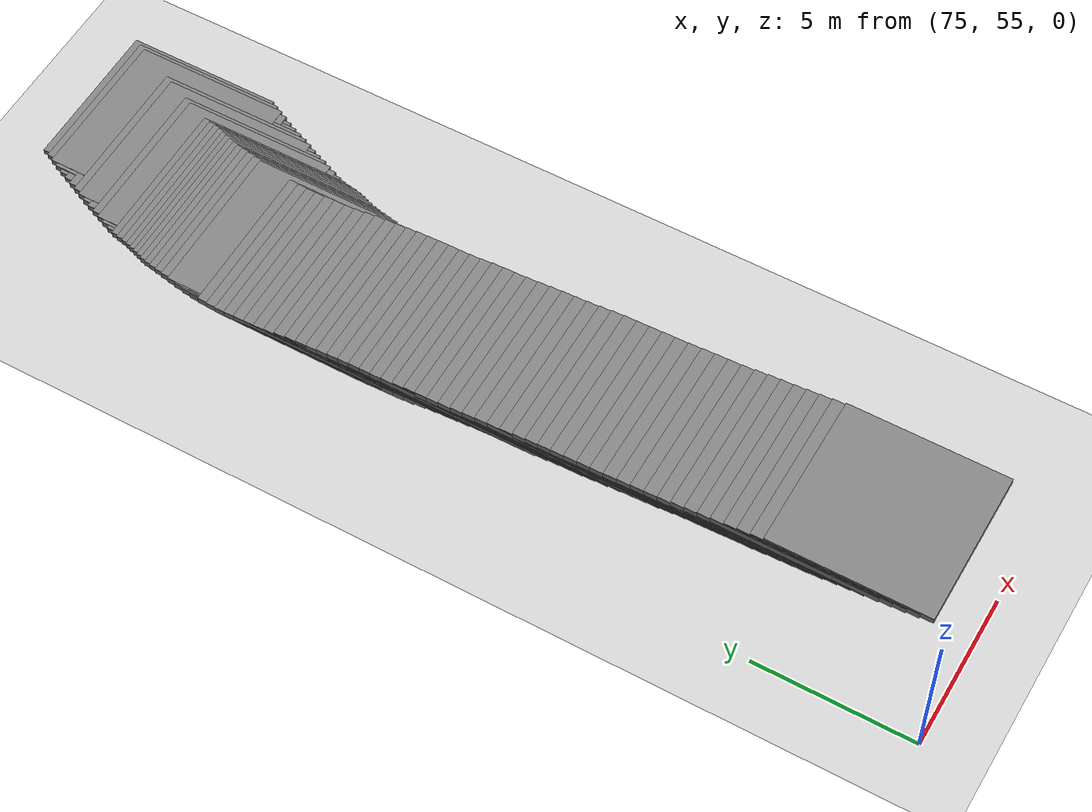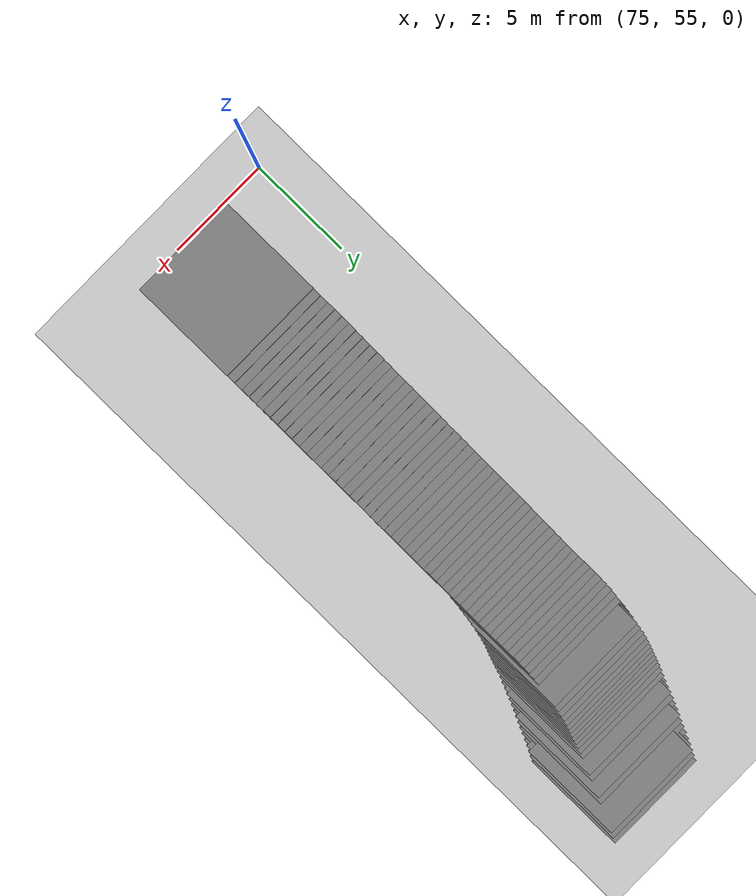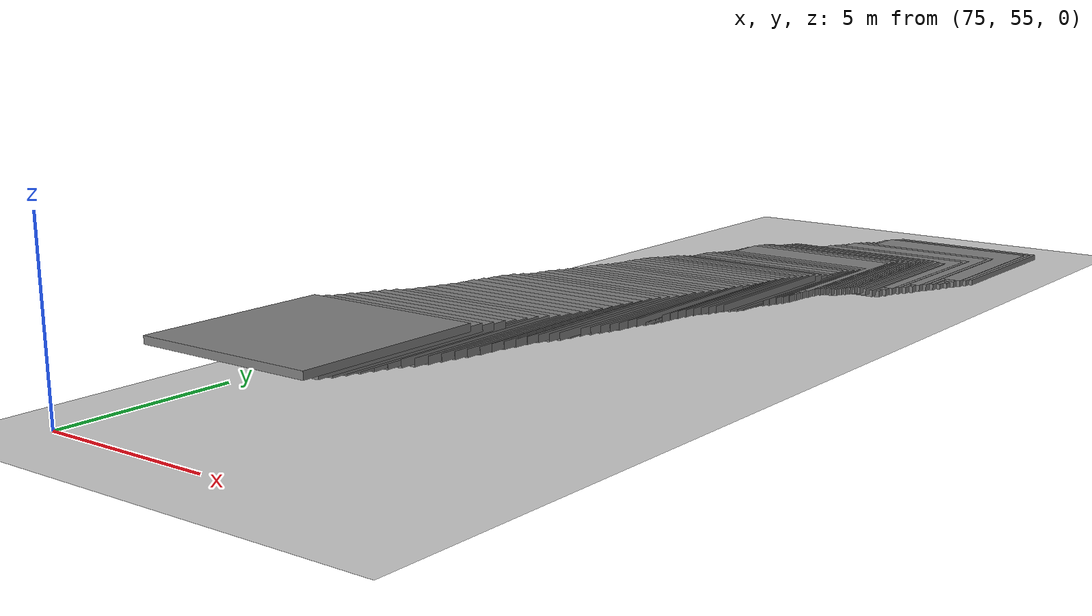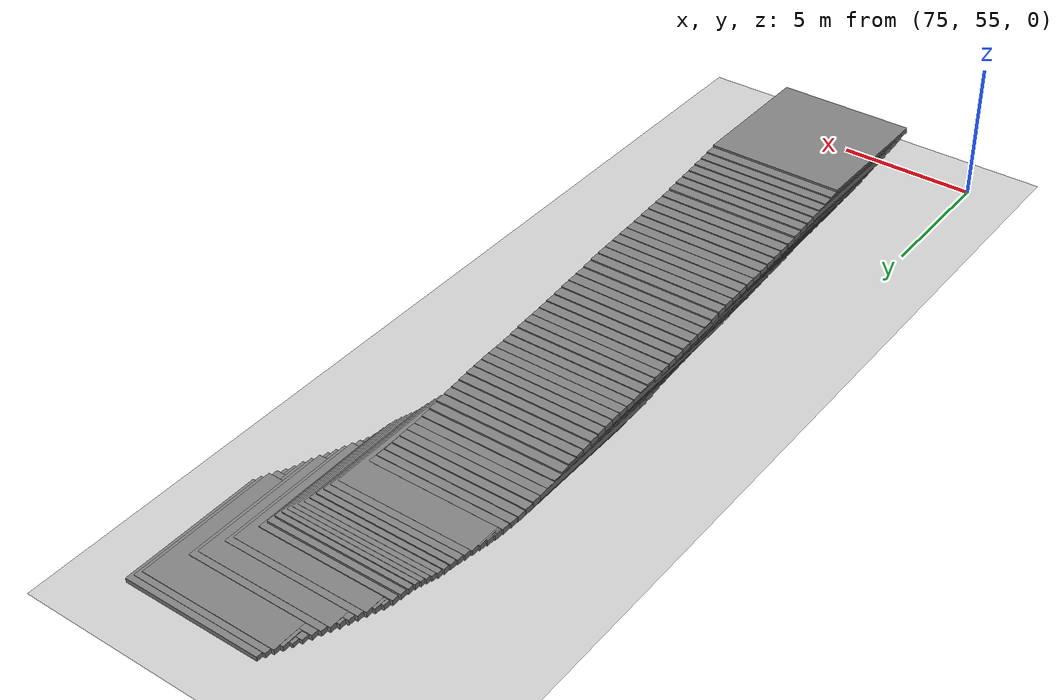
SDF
<sdf version="1.6">
 <world name="default">
  <include><uri>model://sun</uri></include>
  <include><uri>model://ground_plane</uri></include>
  <model name="road_segment_162">
   <static>true</static>
   <link name="link">
    <visual name="visual">
     <geometry><box><size>5.0 5.0 0.2</size></box></geometry>
     <material><ambient>0.5 0.5 0.5 1</ambient><diffuse>0.5 0.5 0.5 1</diffuse></material>
     <pose>82.5091907541002 83.83223012175768 0.03359509219522713 0 0 0</pose>
    </visual>
    <collision name="collision">
     <geometry><box><size>5.0 5.0 0.2</size></box></geometry>
     <pose>82.5091907541002 83.83223012175768 0.03359509219522713 0 0 0</pose>
    </collision>
   </link>
  </model>
  <model name="road_segment_163">
   <static>true</static>
   <link name="link">
    <visual name="visual">
     <geometry><box><size>5.0 5.0 0.2</size></box></geometry>
     <material><ambient>0.5 0.5 0.5 1</ambient><diffuse>0.5 0.5 0.5 1</diffuse></material>
     <pose>82.40809245897916 83.61669526844378 0.04284591468376794 0 0 0</pose>
    </visual>
    <collision name="collision">
     <geometry><box><size>5.0 5.0 0.2</size></box></geometry>
     <pose>82.40809245897916 83.61669526844378 0.04284591468376794 0 0 0</pose>
    </collision>
   </link>
  </model>
  <model name="road_segment_164">
   <static>true</static>
   <link name="link">
    <visual name="visual">
     <geometry><box><size>5.0 5.0 0.2</size></box></geometry>
     <material><ambient>0.5 0.5 0.5 1</ambient><diffuse>0.5 0.5 0.5 1</diffuse></material>
     <pose>82.29768852532783 83.39932172917771 0.058883323380335986 0 0 0</pose>
    </visual>
    <collision name="collision">
     <geometry><box><size>5.0 5.0 0.2</size></box></geometry>
     <pose>82.29768852532783 83.39932172917771 0.058883323380335986 0 0 0</pose>
    </collision>
   </link>
  </model>
  <model name="road_segment_165">
   <static>true</static>
   <link name="link">
    <visual name="visual">
     <geometry><box><size>5.0 5.0 0.2</size></box></geometry>
     <material><ambient>0.5 0.5 0.5 1</ambient><diffuse>0.5 0.5 0.5 1</diffuse></material>
     <pose>82.1840678277524 83.17295905858883 0.055027985973726073 0 0 0</pose>
    </visual>
    <collision name="collision">
     <geometry><box><size>5.0 5.0 0.2</size></box></geometry>
     <pose>82.1840678277524 83.17295905858883 0.055027985973726073 0 0 0</pose>
    </collision>
   </link>
  </model>
  <model name="road_segment_166">
   <static>true</static>
   <link name="link">
    <visual name="visual">
     <geometry><box><size>5.0 5.0 0.2</size></box></geometry>
     <material><ambient>0.5 0.5 0.5 1</ambient><diffuse>0.5 0.5 0.5 1</diffuse></material>
     <pose>82.06895363262622 82.93270409413803 0.020826771144985528 0 0 0</pose>
    </visual>
    <collision name="collision">
     <geometry><box><size>5.0 5.0 0.2</size></box></geometry>
     <pose>82.06895363262622 82.93270409413803 0.020826771144985528 0 0 0</pose>
    </collision>
   </link>
  </model>
  <model name="road_segment_167">
   <static>true</static>
   <link name="link">
    <visual name="visual">
     <geometry><box><size>5.0 5.0 0.2</size></box></geometry>
     <material><ambient>0.5 0.5 0.5 1</ambient><diffuse>0.5 0.5 0.5 1</diffuse></material>
     <pose>81.95315013095072 82.68448149056124 0.025775116579242585 0 0 0</pose>
    </visual>
    <collision name="collision">
     <geometry><box><size>5.0 5.0 0.2</size></box></geometry>
     <pose>81.95315013095072 82.68448149056124 0.025775116579242585 0 0 0</pose>
    </collision>
   </link>
  </model>
  <model name="road_segment_168">
   <static>true</static>
   <link name="link">
    <visual name="visual">
     <geometry><box><size>5.0 5.0 0.2</size></box></geometry>
     <material><ambient>0.5 0.5 0.5 1</ambient><diffuse>0.5 0.5 0.5 1</diffuse></material>
     <pose>81.83849547355129 82.4346244994666 0.05804866270467817 0 0 0</pose>
    </visual>
    <collision name="collision">
     <geometry><box><size>5.0 5.0 0.2</size></box></geometry>
     <pose>81.83849547355129 82.4346244994666 0.05804866270467817 0 0 0</pose>
    </collision>
   </link>
  </model>
  <model name="road_segment_169">
   <static>true</static>
   <link name="link">
    <visual name="visual">
     <geometry><box><size>5.0 5.0 0.2</size></box></geometry>
     <material><ambient>0.5 0.5 0.5 1</ambient><diffuse>0.5 0.5 0.5 1</diffuse></material>
     <pose>81.72464500712064 82.18905777559362 0.07472200334460456 0 0 0</pose>
    </visual>
    <collision name="collision">
     <geometry><box><size>5.0 5.0 0.2</size></box></geometry>
     <pose>81.72464500712064 82.18905777559362 0.07472200334460456 0 0 0</pose>
    </collision>
   </link>
  </model>
  <model name="road_segment_170">
   <static>true</static>
   <link name="link">
    <visual name="visual">
     <geometry><box><size>5.0 5.0 0.2</size></box></geometry>
     <material><ambient>0.5 0.5 0.5 1</ambient><diffuse>0.5 0.5 0.5 1</diffuse></material>
     <pose>81.61274757593489 81.94921140802228 0.08306861010118273 0 0 0</pose>
    </visual>
    <collision name="collision">
     <geometry><box><size>5.0 5.0 0.2</size></box></geometry>
     <pose>81.61274757593489 81.94921140802228 0.08306861010118273 0 0 0</pose>
    </collision>
   </link>
  </model>
  <model name="road_segment_171">
   <static>true</static>
   <link name="link">
    <visual name="visual">
     <geometry><box><size>5.0 5.0 0.2</size></box></geometry>
     <material><ambient>0.5 0.5 0.5 1</ambient><diffuse>0.5 0.5 0.5 1</diffuse></material>
     <pose>81.50291806442978 81.71099942796519 0.07536787172457787 0 0 0</pose>
    </visual>
    <collision name="collision">
     <geometry><box><size>5.0 5.0 0.2</size></box></geometry>
     <pose>81.50291806442978 81.71099942796519 0.07536787172457787 0 0 0</pose>
    </collision>
   </link>
  </model>
  <model name="road_segment_172">
   <static>true</static>
   <link name="link">
    <visual name="visual">
     <geometry><box><size>5.0 5.0 0.2</size></box></geometry>
     <material><ambient>0.5 0.5 0.5 1</ambient><diffuse>0.5 0.5 0.5 1</diffuse></material>
     <pose>81.39389274389345 81.46829288224122 0.08053481876436436 0 0 0</pose>
    </visual>
    <collision name="collision">
     <geometry><box><size>5.0 5.0 0.2</size></box></geometry>
     <pose>81.39389274389345 81.46829288224122 0.08053481876436436 0 0 0</pose>
    </collision>
   </link>
  </model>
  <model name="road_segment_173">
   <static>true</static>
   <link name="link">
    <visual name="visual">
     <geometry><box><size>5.0 5.0 0.2</size></box></geometry>
     <material><ambient>0.5 0.5 0.5 1</ambient><diffuse>0.5 0.5 0.5 1</diffuse></material>
     <pose>81.28808418729753 81.2237476505651 0.09566801172896978 0 0 0</pose>
    </visual>
    <collision name="collision">
     <geometry><box><size>5.0 5.0 0.2</size></box></geometry>
     <pose>81.28808418729753 81.2237476505651 0.09566801172896978 0 0 0</pose>
    </collision>
   </link>
  </model>
  <model name="road_segment_174">
   <static>true</static>
   <link name="link">
    <visual name="visual">
     <geometry><box><size>5.0 5.0 0.2</size></box></geometry>
     <material><ambient>0.5 0.5 0.5 1</ambient><diffuse>0.5 0.5 0.5 1</diffuse></material>
     <pose>81.1866412389018 80.98390128299377 0.10102375106444078 0 0 0</pose>
    </visual>
    <collision name="collision">
     <geometry><box><size>5.0 5.0 0.2</size></box></geometry>
     <pose>81.1866412389018 80.98390128299377 0.10102375106444078 0 0 0</pose>
    </collision>
   </link>
  </model>
  <model name="road_segment_175">
   <static>true</static>
   <link name="link">
    <visual name="visual">
     <geometry><box><size>5.0 5.0 0.2</size></box></geometry>
     <material><ambient>0.5 0.5 0.5 1</ambient><diffuse>0.5 0.5 0.5 1</diffuse></material>
     <pose>81.08611736591062 80.74528070605356 0.09104756870300687 0 0 0</pose>
    </visual>
    <collision name="collision">
     <geometry><box><size>5.0 5.0 0.2</size></box></geometry>
     <pose>81.08611736591062 80.74528070605356 0.09104756870300687 0 0 0</pose>
    </collision>
   </link>
  </model>
  <model name="road_segment_176">
   <static>true</static>
   <link name="link">
    <visual name="visual">
     <geometry><box><size>5.0 5.0 0.2</size></box></geometry>
     <material><ambient>0.5 0.5 0.5 1</ambient><diffuse>0.5 0.5 0.5 1</diffuse></material>
     <pose>80.98352557325512 80.50645583067546 0.08823555714096921 0 0 0</pose>
    </visual>
    <collision name="collision">
     <geometry><box><size>5.0 5.0 0.2</size></box></geometry>
     <pose>80.98352557325512 80.50645583067546 0.08823555714096921 0 0 0</pose>
    </collision>
   </link>
  </model>
  <model name="road_segment_177">
   <static>true</static>
   <link name="link">
    <visual name="visual">
     <geometry><box><size>5.0 5.0 0.2</size></box></geometry>
     <material><ambient>0.5 0.5 0.5 1</ambient><diffuse>0.5 0.5 0.5 1</diffuse></material>
     <pose>80.88219750929518 80.26579226934518 0.13203536973977464 0 0 0</pose>
    </visual>
    <collision name="collision">
     <geometry><box><size>5.0 5.0 0.2</size></box></geometry>
     <pose>80.88219750929518 80.26579226934518 0.13203536973977464 0 0 0</pose>
    </collision>
   </link>
  </model>
  <model name="road_segment_178">
   <static>true</static>
   <link name="link">
    <visual name="visual">
     <geometry><box><size>5.0 5.0 0.2</size></box></geometry>
     <material><ambient>0.5 0.5 0.5 1</ambient><diffuse>0.5 0.5 0.5 1</diffuse></material>
     <pose>80.78822204862061 80.0206341423517 0.21236152333522457 0 0 0</pose>
    </visual>
    <collision name="collision">
     <geometry><box><size>5.0 5.0 0.2</size></box></geometry>
     <pose>80.78822204862061 80.0206341423517 0.21236152333522457 0 0 0</pose>
    </collision>
   </link>
  </model>
  <model name="road_segment_179">
   <static>true</static>
   <link name="link">
    <visual name="visual">
     <geometry><box><size>5.0 5.0 0.2</size></box></geometry>
     <material><ambient>0.5 0.5 0.5 1</ambient><diffuse>0.5 0.5 0.5 1</diffuse></material>
     <pose>80.70630945268996 79.78609953419888 0.28291022330154003 0 0 0</pose>
    </visual>
    <collision name="collision">
     <geometry><box><size>5.0 5.0 0.2</size></box></geometry>
     <pose>80.70630945268996 79.78609953419888 0.28291022330154003 0 0 0</pose>
    </collision>
   </link>
  </model>
  <model name="road_segment_180">
   <static>true</static>
   <link name="link">
    <visual name="visual">
     <geometry><box><size>5.0 5.0 0.2</size></box></geometry>
     <material><ambient>0.5 0.5 0.5 1</ambient><diffuse>0.5 0.5 0.5 1</diffuse></material>
     <pose>80.63898717889435 79.58343548255368 0.3196154201572541 0 0 0</pose>
    </visual>
    <collision name="collision">
     <geometry><box><size>5.0 5.0 0.2</size></box></geometry>
     <pose>80.63898717889435 79.58343548255368 0.3196154201572541 0 0 0</pose>
    </collision>
   </link>
  </model>
  <model name="road_segment_181">
   <static>true</static>
   <link name="link">
    <visual name="visual">
     <geometry><box><size>5.0 5.0 0.2</size></box></geometry>
     <material><ambient>0.5 0.5 0.5 1</ambient><diffuse>0.5 0.5 0.5 1</diffuse></material>
     <pose>80.58016635264389 79.41202909209869 0.3281806285193617 0 0 0</pose>
    </visual>
    <collision name="collision">
     <geometry><box><size>5.0 5.0 0.2</size></box></geometry>
     <pose>80.58016635264389 79.41202909209869 0.3281806285193617 0 0 0</pose>
    </collision>
   </link>
  </model>
  <model name="road_segment_182">
   <static>true</static>
   <link name="link">
    <visual name="visual">
     <geometry><box><size>5.0 5.0 0.2</size></box></geometry>
     <material><ambient>0.5 0.5 0.5 1</ambient><diffuse>0.5 0.5 0.5 1</diffuse></material>
     <pose>80.52180506408752 79.25267630955346 0.3343610920938755 0 0 0</pose>
    </visual>
    <collision name="collision">
     <geometry><box><size>5.0 5.0 0.2</size></box></geometry>
     <pose>80.52180506408752 79.25267630955346 0.3343610920938755 0 0 0</pose>
    </collision>
   </link>
  </model>
  <model name="road_segment_183">
   <static>true</static>
   <link name="link">
    <visual name="visual">
     <geometry><box><size>5.0 5.0 0.2</size></box></geometry>
     <material><ambient>0.5 0.5 0.5 1</ambient><diffuse>0.5 0.5 0.5 1</diffuse></material>
     <pose>80.46034189604282 79.08964615510394 0.34107812324559794 0 0 0</pose>
    </visual>
    <collision name="collision">
     <geometry><box><size>5.0 5.0 0.2</size></box></geometry>
     <pose>80.46034189604282 79.08964615510394 0.34107812324559794 0 0 0</pose>
    </collision>
   </link>
  </model>
  <model name="road_segment_184">
   <static>true</static>
   <link name="link">
    <visual name="visual">
     <geometry><box><size>5.0 5.0 0.2</size></box></geometry>
     <material><ambient>0.5 0.5 0.5 1</ambient><diffuse>0.5 0.5 0.5 1</diffuse></material>
     <pose>80.39669592389805 78.91415379586516 0.3448340962860581 0 0 0</pose>
    </visual>
    <collision name="collision">
     <geometry><box><size>5.0 5.0 0.2</size></box></geometry>
     <pose>80.39669592389805 78.91415379586516 0.3448340962860581 0 0 0</pose>
    </collision>
   </link>
  </model>
  <model name="road_segment_185">
   <static>true</static>
   <link name="link">
    <visual name="visual">
     <geometry><box><size>5.0 5.0 0.2</size></box></geometry>
     <material><ambient>0.5 0.5 0.5 1</ambient><diffuse>0.5 0.5 0.5 1</diffuse></material>
     <pose>80.33282018288173 78.7212960692981 0.3810225984377934 0 0 0</pose>
    </visual>
    <collision name="collision">
     <geometry><box><size>5.0 5.0 0.2</size></box></geometry>
     <pose>80.33282018288173 78.7212960692981 0.3810225984377934 0 0 0</pose>
    </collision>
   </link>
  </model>
  <model name="road_segment_186">
   <static>true</static>
   <link name="link">
    <visual name="visual">
     <geometry><box><size>5.0 5.0 0.2</size></box></geometry>
     <material><ambient>0.5 0.5 0.5 1</ambient><diffuse>0.5 0.5 0.5 1</diffuse></material>
     <pose>80.26997840172207 78.50616981286367 0.42566700814887165 0 0 0</pose>
    </visual>
    <collision name="collision">
     <geometry><box><size>5.0 5.0 0.2</size></box></geometry>
     <pose>80.26997840172207 78.50616981286367 0.42566700814887165 0 0 0</pose>
    </collision>
   </link>
  </model>
  <model name="road_segment_187">
   <static>true</static>
   <link name="link">
    <visual name="visual">
     <geometry><box><size>5.0 5.0 0.2</size></box></geometry>
     <material><ambient>0.5 0.5 0.5 1</ambient><diffuse>0.5 0.5 0.5 1</diffuse></material>
     <pose>80.21265107302236 78.2714309062657 0.4531114460794299 0 0 0</pose>
    </visual>
    <collision name="collision">
     <geometry><box><size>5.0 5.0 0.2</size></box></geometry>
     <pose>80.21265107302236 78.2714309062657 0.4531114460794299 0 0 0</pose>
    </collision>
   </link>
  </model>
  <model name="road_segment_188">
   <static>true</static>
   <link name="link">
    <visual name="visual">
     <geometry><box><size>5.0 5.0 0.2</size></box></geometry>
     <material><ambient>0.5 0.5 0.5 1</ambient><diffuse>0.5 0.5 0.5 1</diffuse></material>
     <pose>80.1602637746364 78.02504698863743 0.4663567160871902 0 0 0</pose>
    </visual>
    <collision name="collision">
     <geometry><box><size>5.0 5.0 0.2</size></box></geometry>
     <pose>80.1602637746364 78.02504698863743 0.4663567160871902 0 0 0</pose>
    </collision>
   </link>
  </model>
  <model name="road_segment_189">
   <static>true</static>
   <link name="link">
    <visual name="visual">
     <geometry><box><size>5.0 5.0 0.2</size></box></geometry>
     <material><ambient>0.5 0.5 0.5 1</ambient><diffuse>0.5 0.5 0.5 1</diffuse></material>
     <pose>80.10822112954143 77.76517937402672 0.46810552893142565 0 0 0</pose>
    </visual>
    <collision name="collision">
     <geometry><box><size>5.0 5.0 0.2</size></box></geometry>
     <pose>80.10822112954143 77.76517937402672 0.46810552893142565 0 0 0</pose>
    </collision>
   </link>
  </model>
  <model name="road_segment_190">
   <static>true</static>
   <link name="link">
    <visual name="visual">
     <geometry><box><size>5.0 5.0 0.2</size></box></geometry>
     <material><ambient>0.5 0.5 0.5 1</ambient><diffuse>0.5 0.5 0.5 1</diffuse></material>
     <pose>80.05698267543157 77.49284955462677 0.46790680019912617 0 0 0</pose>
    </visual>
    <collision name="collision">
     <geometry><box><size>5.0 5.0 0.2</size></box></geometry>
     <pose>80.05698267543157 77.49284955462677 0.46790680019912617 0 0 0</pose>
    </collision>
   </link>
  </model>
  <model name="road_segment_191">
   <static>true</static>
   <link name="link">
    <visual name="visual">
     <geometry><box><size>5.0 5.0 0.2</size></box></geometry>
     <material><ambient>0.5 0.5 0.5 1</ambient><diffuse>0.5 0.5 0.5 1</diffuse></material>
     <pose>80.01102890492646 77.21112200702453 0.4580697279503019 0 0 0</pose>
    </visual>
    <collision name="collision">
     <geometry><box><size>5.0 5.0 0.2</size></box></geometry>
     <pose>80.01102890492646 77.21112200702453 0.4580697279503019 0 0 0</pose>
    </collision>
   </link>
  </model>
  <model name="road_segment_192">
   <static>true</static>
   <link name="link">
    <visual name="visual">
     <geometry><box><size>5.0 5.0 0.2</size></box></geometry>
     <material><ambient>0.5 0.5 0.5 1</ambient><diffuse>0.5 0.5 0.5 1</diffuse></material>
     <pose>79.97173843114106 76.91693225463305 0.45407528043108236 0 0 0</pose>
    </visual>
    <collision name="collision">
     <geometry><box><size>5.0 5.0 0.2</size></box></geometry>
     <pose>79.97173843114106 76.91693225463305 0.45407528043108236 0 0 0</pose>
    </collision>
   </link>
  </model>
  <model name="road_segment_193">
   <static>true</static>
   <link name="link">
    <visual name="visual">
     <geometry><box><size>5.0 5.0 0.2</size></box></geometry>
     <material><ambient>0.5 0.5 0.5 1</ambient><diffuse>0.5 0.5 0.5 1</diffuse></material>
     <pose>79.93440099260056 76.61150608809075 0.4704902737190194 0 0 0</pose>
    </visual>
    <collision name="collision">
     <geometry><box><size>5.0 5.0 0.2</size></box></geometry>
     <pose>79.93440099260056 76.61150608809075 0.4704902737190194 0 0 0</pose>
    </collision>
   </link>
  </model>
  <model name="road_segment_194">
   <static>true</static>
   <link name="link">
    <visual name="visual">
     <geometry><box><size>5.0 5.0 0.2</size></box></geometry>
     <material><ambient>0.5 0.5 0.5 1</ambient><diffuse>0.5 0.5 0.5 1</diffuse></material>
     <pose>79.8974082073347 76.29974666993306 0.49358255241221904 0 0 0</pose>
    </visual>
    <collision name="collision">
     <geometry><box><size>5.0 5.0 0.2</size></box></geometry>
     <pose>79.8974082073347 76.29974666993306 0.49358255241221904 0 0 0</pose>
    </collision>
   </link>
  </model>
  <model name="road_segment_195">
   <static>true</static>
   <link name="link">
    <visual name="visual">
     <geometry><box><size>5.0 5.0 0.2</size></box></geometry>
     <material><ambient>0.5 0.5 0.5 1</ambient><diffuse>0.5 0.5 0.5 1</diffuse></material>
     <pose>79.86661918109448 75.98308408923629 0.5210965453990821 0 0 0</pose>
    </visual>
    <collision name="collision">
     <geometry><box><size>5.0 5.0 0.2</size></box></geometry>
     <pose>79.86661918109448 75.98308408923629 0.5210965453990821 0 0 0</pose>
    </collision>
   </link>
  </model>
  <model name="road_segment_196">
   <static>true</static>
   <link name="link">
    <visual name="visual">
     <geometry><box><size>5.0 5.0 0.2</size></box></geometry>
     <material><ambient>0.5 0.5 0.5 1</ambient><diffuse>0.5 0.5 0.5 1</diffuse></material>
     <pose>79.84720371306517 75.65947536160675 0.5638729050265452 0 0 0</pose>
    </visual>
    <collision name="collision">
     <geometry><box><size>5.0 5.0 0.2</size></box></geometry>
     <pose>79.84720371306517 75.65947536160675 0.5638729050265452 0 0 0</pose>
    </collision>
   </link>
  </model>
  <model name="road_segment_197">
   <static>true</static>
   <link name="link">
    <visual name="visual">
     <geometry><box><size>5.0 5.0 0.2</size></box></geometry>
     <material><ambient>0.5 0.5 0.5 1</ambient><diffuse>0.5 0.5 0.5 1</diffuse></material>
     <pose>79.83927668764989 75.32871618860653 0.6032211940218424 0 0 0</pose>
    </visual>
    <collision name="collision">
     <geometry><box><size>5.0 5.0 0.2</size></box></geometry>
     <pose>79.83927668764989 75.32871618860653 0.6032211940218424 0 0 0</pose>
    </collision>
   </link>
  </model>
  <model name="road_segment_198">
   <static>true</static>
   <link name="link">
    <visual name="visual">
     <geometry><box><size>5.0 5.0 0.2</size></box></geometry>
     <material><ambient>0.5 0.5 0.5 1</ambient><diffuse>0.5 0.5 0.5 1</diffuse></material>
     <pose>79.83927668764989 74.991419465553 0.6152045365795009 0 0 0</pose>
    </visual>
    <collision name="collision">
     <geometry><box><size>5.0 5.0 0.2</size></box></geometry>
     <pose>79.83927668764989 74.991419465553 0.6152045365795009 0 0 0</pose>
    </collision>
   </link>
  </model>
  <model name="road_segment_199">
   <static>true</static>
   <link name="link">
    <visual name="visual">
     <geometry><box><size>5.0 5.0 0.2</size></box></geometry>
     <material><ambient>0.5 0.5 0.5 1</ambient><diffuse>0.5 0.5 0.5 1</diffuse></material>
     <pose>79.84042553190966 74.64758519244616 0.6238392999979134 0 0 0</pose>
    </visual>
    <collision name="collision">
     <geometry><box><size>5.0 5.0 0.2</size></box></geometry>
     <pose>79.84042553190966 74.64758519244616 0.6238392999979134 0 0 0</pose>
    </collision>
   </link>
  </model>
  <model name="road_segment_200">
   <static>true</static>
   <link name="link">
    <visual name="visual">
     <geometry><box><size>5.0 5.0 0.2</size></box></geometry>
     <material><ambient>0.5 0.5 0.5 1</ambient><diffuse>0.5 0.5 0.5 1</diffuse></material>
     <pose>79.84295298928443 74.29946065211763 0.6629193052046061 0 0 0</pose>
    </visual>
    <collision name="collision">
     <geometry><box><size>5.0 5.0 0.2</size></box></geometry>
     <pose>79.84295298928443 74.29946065211763 0.6629193052046061 0 0 0</pose>
    </collision>
   </link>
  </model>
  <model name="road_segment_201">
   <static>true</static>
   <link name="link">
    <visual name="visual">
     <geometry><box><size>5.0 5.0 0.2</size></box></geometry>
     <material><ambient>0.5 0.5 0.5 1</ambient><diffuse>0.5 0.5 0.5 1</diffuse></material>
     <pose>79.84869721059962 73.94786303832274 0.724525212217445 0 0 0</pose>
    </visual>
    <collision name="collision">
     <geometry><box><size>5.0 5.0 0.2</size></box></geometry>
     <pose>79.84869721059962 73.94786303832274 0.724525212217445 0 0 0</pose>
    </collision>
   </link>
  </model>
  <model name="road_segment_202">
   <static>true</static>
   <link name="link">
    <visual name="visual">
     <geometry><box><size>5.0 5.0 0.2</size></box></geometry>
     <material><ambient>0.5 0.5 0.5 1</ambient><diffuse>0.5 0.5 0.5 1</diffuse></material>
     <pose>79.85145443682958 73.59320094794452 0.783378726287936 0 0 0</pose>
    </visual>
    <collision name="collision">
     <geometry><box><size>5.0 5.0 0.2</size></box></geometry>
     <pose>79.85145443682958 73.59320094794452 0.783378726287936 0 0 0</pose>
    </collision>
   </link>
  </model>
  <model name="road_segment_203">
   <static>true</static>
   <link name="link">
    <visual name="visual">
     <geometry><box><size>5.0 5.0 0.2</size></box></geometry>
     <material><ambient>0.5 0.5 0.5 1</ambient><diffuse>0.5 0.5 0.5 1</diffuse></material>
     <pose>79.84915674831004 73.23690447004847 0.8233530107899765 0 0 0</pose>
    </visual>
    <collision name="collision">
     <geometry><box><size>5.0 5.0 0.2</size></box></geometry>
     <pose>79.84915674831004 73.23690447004847 0.8233530107899765 0 0 0</pose>
    </collision>
   </link>
  </model>
  <model name="road_segment_204">
   <static>true</static>
   <link name="link">
    <visual name="visual">
     <geometry><box><size>5.0 5.0 0.2</size></box></geometry>
     <material><ambient>0.5 0.5 0.5 1</ambient><diffuse>0.5 0.5 0.5 1</diffuse></material>
     <pose>79.84444648683518 72.8812208874698 0.8578225094073213 0 0 0</pose>
    </visual>
    <collision name="collision">
     <geometry><box><size>5.0 5.0 0.2</size></box></geometry>
     <pose>79.84444648683518 72.8812208874698 0.8578225094073213 0 0 0</pose>
    </collision>
   </link>
  </model>
  <model name="road_segment_205">
   <static>true</static>
   <link name="link">
    <visual name="visual">
     <geometry><box><size>5.0 5.0 0.2</size></box></geometry>
     <material><ambient>0.5 0.5 0.5 1</ambient><diffuse>0.5 0.5 0.5 1</diffuse></material>
     <pose>79.83824272780957 72.52553730489475 0.909183950270122 0 0 0</pose>
    </visual>
    <collision name="collision">
     <geometry><box><size>5.0 5.0 0.2</size></box></geometry>
     <pose>79.83824272780957 72.52553730489475 0.909183950270122 0 0 0</pose>
    </collision>
   </link>
  </model>
  <model name="road_segment_206">
   <static>true</static>
   <link name="link">
    <visual name="visual">
     <geometry><box><size>5.0 5.0 0.2</size></box></geometry>
     <material><ambient>0.5 0.5 0.5 1</ambient><diffuse>0.5 0.5 0.5 1</diffuse></material>
     <pose>79.83318781304372 72.16556345509439 0.9544146097414837 0 0 0</pose>
    </visual>
    <collision name="collision">
     <geometry><box><size>5.0 5.0 0.2</size></box></geometry>
     <pose>79.83318781304372 72.16556345509439 0.9544146097414837 0 0 0</pose>
    </collision>
   </link>
  </model>
  <model name="road_segment_207">
   <static>true</static>
   <link name="link">
    <visual name="visual">
     <geometry><box><size>5.0 5.0 0.2</size></box></geometry>
     <material><ambient>0.5 0.5 0.5 1</ambient><diffuse>0.5 0.5 0.5 1</diffuse></material>
     <pose>79.82985616468386 71.80232083026918 0.9843431568257854 0 0 0</pose>
    </visual>
    <collision name="collision">
     <geometry><box><size>5.0 5.0 0.2</size></box></geometry>
     <pose>79.82985616468386 71.80232083026918 0.9843431568257854 0 0 0</pose>
    </collision>
   </link>
  </model>
  <model name="road_segment_208">
   <static>true</static>
   <link name="link">
    <visual name="visual">
     <geometry><box><size>5.0 5.0 0.2</size></box></geometry>
     <material><ambient>0.5 0.5 0.5 1</ambient><diffuse>0.5 0.5 0.5 1</diffuse></material>
     <pose>79.82422682780445 71.44050829451666 1.0130793315162903 0 0 0</pose>
    </visual>
    <collision name="collision">
     <geometry><box><size>5.0 5.0 0.2</size></box></geometry>
     <pose>79.82422682780445 71.44050829451666 1.0130793315162903 0 0 0</pose>
    </collision>
   </link>
  </model>
  <model name="road_segment_209">
   <static>true</static>
   <link name="link">
    <visual name="visual">
     <geometry><box><size>5.0 5.0 0.2</size></box></geometry>
     <material><ambient>0.5 0.5 0.5 1</ambient><diffuse>0.5 0.5 0.5 1</diffuse></material>
     <pose>79.81675934009962 71.08339462286168 1.0303886040995751 0 0 0</pose>
    </visual>
    <collision name="collision">
     <geometry><box><size>5.0 5.0 0.2</size></box></geometry>
     <pose>79.81675934009962 71.08339462286168 1.0303886040995751 0 0 0</pose>
    </collision>
   </link>
  </model>
  <model name="road_segment_210">
   <static>true</static>
   <link name="link">
    <visual name="visual">
     <geometry><box><size>5.0 5.0 0.2</size></box></geometry>
     <material><ambient>0.5 0.5 0.5 1</ambient><diffuse>0.5 0.5 0.5 1</diffuse></material>
     <pose>79.80975139008888 70.72730244340715 1.0440412680085491 0 0 0</pose>
    </visual>
    <collision name="collision">
     <geometry><box><size>5.0 5.0 0.2</size></box></geometry>
     <pose>79.80975139008888 70.72730244340715 1.0440412680085491 0 0 0</pose>
    </collision>
   </link>
  </model>
  <model name="road_segment_211">
   <static>true</static>
   <link name="link">
    <visual name="visual">
     <geometry><box><size>5.0 5.0 0.2</size></box></geometry>
     <material><ambient>0.5 0.5 0.5 1</ambient><diffuse>0.5 0.5 0.5 1</diffuse></material>
     <pose>79.8061899728738 70.36630710141357 1.0692798170105833 0 0 0</pose>
    </visual>
    <collision name="collision">
     <geometry><box><size>5.0 5.0 0.2</size></box></geometry>
     <pose>79.8061899728738 70.36630710141357 1.0692798170105833 0 0 0</pose>
    </collision>
   </link>
  </model>
  <model name="road_segment_212">
   <static>true</static>
   <link name="link">
    <visual name="visual">
     <geometry><box><size>5.0 5.0 0.2</size></box></geometry>
     <material><ambient>0.5 0.5 0.5 1</ambient><diffuse>0.5 0.5 0.5 1</diffuse></material>
     <pose>79.80825789255445 69.99938710468044 1.106114187542292 0 0 0</pose>
    </visual>
    <collision name="collision">
     <geometry><box><size>5.0 5.0 0.2</size></box></geometry>
     <pose>79.80825789255445 69.99938710468044 1.106114187542292 0 0 0</pose>
    </collision>
   </link>
  </model>
  <model name="road_segment_213">
   <static>true</static>
   <link name="link">
    <visual name="visual">
     <geometry><box><size>5.0 5.0 0.2</size></box></geometry>
     <material><ambient>0.5 0.5 0.5 1</ambient><diffuse>0.5 0.5 0.5 1</diffuse></material>
     <pose>79.80825789255445 69.62817684072562 1.1535308630689478 0 0 0</pose>
    </visual>
    <collision name="collision">
     <geometry><box><size>5.0 5.0 0.2</size></box></geometry>
     <pose>79.80825789255445 69.62817684072562 1.1535308630689478 0 0 0</pose>
    </collision>
   </link>
  </model>
  <model name="road_segment_214">
   <static>true</static>
   <link name="link">
    <visual name="visual">
     <geometry><box><size>5.0 5.0 0.2</size></box></geometry>
     <material><ambient>0.5 0.5 0.5 1</ambient><diffuse>0.5 0.5 0.5 1</diffuse></material>
     <pose>79.80343274664382 69.2547192939428 1.1846219732372016 0 0 0</pose>
    </visual>
    <collision name="collision">
     <geometry><box><size>5.0 5.0 0.2</size></box></geometry>
     <pose>79.80343274664382 69.2547192939428 1.1846219732372016 0 0 0</pose>
    </collision>
   </link>
  </model>
  <model name="road_segment_215">
   <static>true</static>
   <link name="link">
    <visual name="visual">
     <geometry><box><size>5.0 5.0 0.2</size></box></geometry>
     <material><ambient>0.5 0.5 0.5 1</ambient><diffuse>0.5 0.5 0.5 1</diffuse></material>
     <pose>79.79998621384819 68.87758437525568 1.199824721258112 0 0 0</pose>
    </visual>
    <collision name="collision">
     <geometry><box><size>5.0 5.0 0.2</size></box></geometry>
     <pose>79.79998621384819 68.87758437525568 1.199824721258112 0 0 0</pose>
    </collision>
   </link>
  </model>
  <model name="road_segment_216">
   <static>true</static>
   <link name="link">
    <visual name="visual">
     <geometry><box><size>5.0 5.0 0.2</size></box></geometry>
     <material><ambient>0.5 0.5 0.5 1</ambient><diffuse>0.5 0.5 0.5 1</diffuse></material>
     <pose>79.79757364090919 68.4943205033911 1.235774748931088 0 0 0</pose>
    </visual>
    <collision name="collision">
     <geometry><box><size>5.0 5.0 0.2</size></box></geometry>
     <pose>79.79757364090919 68.4943205033911 1.235774748931088 0 0 0</pose>
    </collision>
   </link>
  </model>
  <model name="road_segment_217">
   <static>true</static>
   <link name="link">
    <visual name="visual">
     <geometry><box><size>5.0 5.0 0.2</size></box></geometry>
     <material><ambient>0.5 0.5 0.5 1</ambient><diffuse>0.5 0.5 0.5 1</diffuse></material>
     <pose>79.7959652589553 68.10656206586329 1.2779747952348823 0 0 0</pose>
    </visual>
    <collision name="collision">
     <geometry><box><size>5.0 5.0 0.2</size></box></geometry>
     <pose>79.7959652589553 68.10656206586329 1.2779747952348823 0 0 0</pose>
    </collision>
   </link>
  </model>
  <model name="road_segment_218">
   <static>true</static>
   <link name="link">
    <visual name="visual">
     <geometry><box><size>5.0 5.0 0.2</size></box></geometry>
     <material><ambient>0.5 0.5 0.5 1</ambient><diffuse>0.5 0.5 0.5 1</diffuse></material>
     <pose>79.7951610679702 67.71573915175219 1.3203636338343616 0 0 0</pose>
    </visual>
    <collision name="collision">
     <geometry><box><size>5.0 5.0 0.2</size></box></geometry>
     <pose>79.7951610679702 67.71573915175219 1.3203636338343616 0 0 0</pose>
    </collision>
   </link>
  </model>
  <model name="road_segment_219">
   <static>true</static>
   <link name="link">
    <visual name="visual">
     <geometry><box><size>5.0 5.0 0.2</size></box></geometry>
     <material><ambient>0.5 0.5 0.5 1</ambient><diffuse>0.5 0.5 0.5 1</diffuse></material>
     <pose>79.79228895730444 67.32021737353992 1.364898742742675 0 0 0</pose>
    </visual>
    <collision name="collision">
     <geometry><box><size>5.0 5.0 0.2</size></box></geometry>
     <pose>79.79228895730444 67.32021737353992 1.364898742742675 0 0 0</pose>
    </collision>
   </link>
  </model>
  <model name="road_segment_220">
   <static>true</static>
   <link name="link">
    <visual name="visual">
     <geometry><box><size>5.0 5.0 0.2</size></box></geometry>
     <material><ambient>0.5 0.5 0.5 1</ambient><diffuse>0.5 0.5 0.5 1</diffuse></material>
     <pose>79.78987638434913 66.92020102966441 1.3908030329979124 0 0 0</pose>
    </visual>
    <collision name="collision">
     <geometry><box><size>5.0 5.0 0.2</size></box></geometry>
     <pose>79.78987638434913 66.92020102966441 1.3908030329979124 0 0 0</pose>
    </collision>
   </link>
  </model>
  <model name="road_segment_221">
   <static>true</static>
   <link name="link">
    <visual name="visual">
     <geometry><box><size>5.0 5.0 0.2</size></box></geometry>
     <material><ambient>0.5 0.5 0.5 1</ambient><diffuse>0.5 0.5 0.5 1</diffuse></material>
     <pose>79.7905656909148 66.517120209202 1.4226294394756742 0 0 0</pose>
    </visual>
    <collision name="collision">
     <geometry><box><size>5.0 5.0 0.2</size></box></geometry>
     <pose>79.7905656909148 66.517120209202 1.4226294394756742 0 0 0</pose>
    </collision>
   </link>
  </model>
  <model name="road_segment_222">
   <static>true</static>
   <link name="link">
    <visual name="visual">
     <geometry><box><size>5.0 5.0 0.2</size></box></geometry>
     <material><ambient>0.5 0.5 0.5 1</ambient><diffuse>0.5 0.5 0.5 1</diffuse></material>
     <pose>79.78953173107448 66.11546947781227 1.4750441426196619 0 0 0</pose>
    </visual>
    <collision name="collision">
     <geometry><box><size>5.0 5.0 0.2</size></box></geometry>
     <pose>79.78953173107448 66.11546947781227 1.4750441426196619 0 0 0</pose>
    </collision>
   </link>
  </model>
  <model name="road_segment_223">
   <static>true</static>
   <link name="link">
    <visual name="visual">
     <geometry><box><size>5.0 5.0 0.2</size></box></geometry>
     <material><ambient>0.5 0.5 0.5 1</ambient><diffuse>0.5 0.5 0.5 1</diffuse></material>
     <pose>79.78528100729372 65.71606602925415 1.5304397767481421 0 0 0</pose>
    </visual>
    <collision name="collision">
     <geometry><box><size>5.0 5.0 0.2</size></box></geometry>
     <pose>79.78528100729372 65.71606602925415 1.5304397767481421 0 0 0</pose>
    </collision>
   </link>
  </model>
  <model name="road_segment_224">
   <static>true</static>
   <link name="link">
    <visual name="visual">
     <geometry><box><size>5.0 5.0 0.2</size></box></geometry>
     <material><ambient>0.5 0.5 0.5 1</ambient><diffuse>0.5 0.5 0.5 1</diffuse></material>
     <pose>79.78034097696366 65.31461959630596 1.5674629395755353 0 0 0</pose>
    </visual>
    <collision name="collision">
     <geometry><box><size>5.0 5.0 0.2</size></box></geometry>
     <pose>79.78034097696366 65.31461959630596 1.5674629395755353 0 0 0</pose>
    </collision>
   </link>
  </model>
  <model name="road_segment_225">
   <static>true</static>
   <link name="link">
    <visual name="visual">
     <geometry><box><size>5.0 5.0 0.2</size></box></geometry>
     <material><ambient>0.5 0.5 0.5 1</ambient><diffuse>0.5 0.5 0.5 1</diffuse></material>
     <pose>79.77551583106936 64.90827000081872 1.588220155664216 0 0 0</pose>
    </visual>
    <collision name="collision">
     <geometry><box><size>5.0 5.0 0.2</size></box></geometry>
     <pose>79.77551583106936 64.90827000081872 1.588220155664216 0 0 0</pose>
    </collision>
   </link>
  </model>
  <model name="road_segment_226">
   <static>true</static>
   <link name="link">
    <visual name="visual">
     <geometry><box><size>5.0 5.0 0.2</size></box></geometry>
     <material><ambient>0.5 0.5 0.5 1</ambient><diffuse>0.5 0.5 0.5 1</diffuse></material>
     <pose>79.77092045403026 64.49763013810613 1.6188343168749508 0 0 0</pose>
    </visual>
    <collision name="collision">
     <geometry><box><size>5.0 5.0 0.2</size></box></geometry>
     <pose>79.77092045403026 64.49763013810613 1.6188343168749508 0 0 0</pose>
    </collision>
   </link>
  </model>
  <model name="road_segment_227">
   <static>true</static>
   <link name="link">
    <visual name="visual">
     <geometry><box><size>5.0 5.0 0.2</size></box></geometry>
     <material><ambient>0.5 0.5 0.5 1</ambient><diffuse>0.5 0.5 0.5 1</diffuse></material>
     <pose>79.7664399613943 64.08719457383148 1.6499949820995092 0 0 0</pose>
    </visual>
    <collision name="collision">
     <geometry><box><size>5.0 5.0 0.2</size></box></geometry>
     <pose>79.7664399613943 64.08719457383148 1.6499949820995092 0 0 0</pose>
    </collision>
   </link>
  </model>
  <model name="road_segment_228">
   <static>true</static>
   <link name="link">
    <visual name="visual">
     <geometry><box><size>5.0 5.0 0.2</size></box></geometry>
     <material><ambient>0.5 0.5 0.5 1</ambient><diffuse>0.5 0.5 0.5 1</diffuse></material>
     <pose>79.76483157942408 63.675124622046226 1.663886120487243 0 0 0</pose>
    </visual>
    <collision name="collision">
     <geometry><box><size>5.0 5.0 0.2</size></box></geometry>
     <pose>79.76483157942408 63.675124622046226 1.663886120487243 0 0 0</pose>
    </collision>
   </link>
  </model>
  <model name="road_segment_229">
   <static>true</static>
   <link name="link">
    <visual name="visual">
     <geometry><box><size>5.0 5.0 0.2</size></box></geometry>
     <material><ambient>0.5 0.5 0.5 1</ambient><diffuse>0.5 0.5 0.5 1</diffuse></material>
     <pose>79.7637976196001 63.25876440303928 1.6957522727114647 0 0 0</pose>
    </visual>
    <collision name="collision">
     <geometry><box><size>5.0 5.0 0.2</size></box></geometry>
     <pose>79.7637976196001 63.25876440303928 1.6957522727114647 0 0 0</pose>
    </collision>
   </link>
  </model>
  <model name="road_segment_230">
   <static>true</static>
   <link name="link">
    <visual name="visual">
     <geometry><box><size>5.0 5.0 0.2</size></box></geometry>
     <material><ambient>0.5 0.5 0.5 1</ambient><diffuse>0.5 0.5 0.5 1</diffuse></material>
     <pose>79.76069574007911 62.841995587152866 1.7340373629889596 0 0 0</pose>
    </visual>
    <collision name="collision">
     <geometry><box><size>5.0 5.0 0.2</size></box></geometry>
     <pose>79.76069574007911 62.841995587152866 1.7340373629889596 0 0 0</pose>
    </collision>
   </link>
  </model>
  <model name="road_segment_231">
   <static>true</static>
   <link name="link">
    <visual name="visual">
     <geometry><box><size>5.0 5.0 0.2</size></box></geometry>
     <material><ambient>0.5 0.5 0.5 1</ambient><diffuse>0.5 0.5 0.5 1</diffuse></material>
     <pose>79.75644501629839 62.4233880853143 1.769192475732738 0 0 0</pose>
    </visual>
    <collision name="collision">
     <geometry><box><size>5.0 5.0 0.2</size></box></geometry>
     <pose>79.75644501629839 62.4233880853143 1.769192475732738 0 0 0</pose>
    </collision>
   </link>
  </model>
  <model name="road_segment_232">
   <static>true</static>
   <link name="link">
    <visual name="visual">
     <geometry><box><size>5.0 5.0 0.2</size></box></geometry>
     <material><ambient>0.5 0.5 0.5 1</ambient><diffuse>0.5 0.5 0.5 1</diffuse></material>
     <pose>79.75047102614431 62.0051891803552 1.8017641149566226 0 0 0</pose>
    </visual>
    <collision name="collision">
     <geometry><box><size>5.0 5.0 0.2</size></box></geometry>
     <pose>79.75047102614431 62.0051891803552 1.8017641149566226 0 0 0</pose>
    </collision>
   </link>
  </model>
  <model name="road_segment_233">
   <static>true</static>
   <link name="link">
    <visual name="visual">
     <geometry><box><size>5.0 5.0 0.2</size></box></geometry>
     <material><ambient>0.5 0.5 0.5 1</ambient><diffuse>0.5 0.5 0.5 1</diffuse></material>
     <pose>79.74472680482913 61.59168913949363 1.8407646286703954 0 0 0</pose>
    </visual>
    <collision name="collision">
     <geometry><box><size>5.0 5.0 0.2</size></box></geometry>
     <pose>79.74472680482913 61.59168913949363 1.8407646286703954 0 0 0</pose>
    </collision>
   </link>
  </model>
  <model name="road_segment_234">
   <static>true</static>
   <link name="link">
    <visual name="visual">
     <geometry><box><size>5.0 5.0 0.2</size></box></geometry>
     <material><ambient>0.5 0.5 0.5 1</ambient><diffuse>0.5 0.5 0.5 1</diffuse></material>
     <pose>79.74105050317826 61.18247936585375 1.908233033286069 0 0 0</pose>
    </visual>
    <collision name="collision">
     <geometry><box><size>5.0 5.0 0.2</size></box></geometry>
     <pose>79.74105050317826 61.18247936585375 1.908233033286069 0 0 0</pose>
    </collision>
   </link>
  </model>
  <model name="road_segment_235">
   <static>true</static>
   <link name="link">
    <visual name="visual">
     <geometry><box><size>5.0 5.0 0.2</size></box></geometry>
     <material><ambient>0.5 0.5 0.5 1</ambient><diffuse>0.5 0.5 0.5 1</diffuse></material>
     <pose>79.73863793023926 60.778377053198106 1.9606775457399017 0 0 0</pose>
    </visual>
    <collision name="collision">
     <geometry><box><size>5.0 5.0 0.2</size></box></geometry>
     <pose>79.73863793023926 60.778377053198106 1.9606775457399017 0 0 0</pose>
    </collision>
   </link>
  </model>
  <model name="road_segment_236">
   <static>true</static>
   <link name="link">
    <visual name="visual">
     <geometry><box><size>5.0 5.0 0.2</size></box></geometry>
     <material><ambient>0.5 0.5 0.5 1</ambient><diffuse>0.5 0.5 0.5 1</diffuse></material>
     <pose>79.7366848949944 60.3804036937163 2.0015759188471347 0 0 0</pose>
    </visual>
    <collision name="collision">
     <geometry><box><size>5.0 5.0 0.2</size></box></geometry>
     <pose>79.7366848949944 60.3804036937163 2.0015759188471347 0 0 0</pose>
    </collision>
   </link>
  </model>
  <model name="road_segment_237">
   <static>true</static>
   <link name="link">
    <visual name="visual">
     <geometry><box><size>5.0 5.0 0.2</size></box></geometry>
     <material><ambient>0.5 0.5 0.5 1</ambient><diffuse>0.5 0.5 0.5 1</diffuse></material>
     <pose>79.73657001055864 59.986107706135186 2.0433089526300257 0 0 0</pose>
    </visual>
    <collision name="collision">
     <geometry><box><size>5.0 5.0 0.2</size></box></geometry>
     <pose>79.73657001055864 59.986107706135186 2.0433089526300257 0 0 0</pose>
    </collision>
   </link>
  </model>
  <model name="road_segment_238">
   <static>true</static>
   <link name="link">
    <visual name="visual">
     <geometry><box><size>5.0 5.0 0.2</size></box></geometry>
     <material><ambient>0.5 0.5 0.5 1</ambient><diffuse>0.5 0.5 0.5 1</diffuse></material>
     <pose>79.73932723678861 59.593854702947766 2.091818636184329 0 0 0</pose>
    </visual>
    <collision name="collision">
     <geometry><box><size>5.0 5.0 0.2</size></box></geometry>
     <pose>79.73932723678861 59.593854702947766 2.091818636184329 0 0 0</pose>
    </collision>
   </link>
  </model>
  <model name="road_segment_239">
   <static>true</static>
   <link name="link">
    <visual name="visual">
     <geometry><box><size>5.0 5.0 0.2</size></box></geometry>
     <material><ambient>0.5 0.5 0.5 1</ambient><diffuse>0.5 0.5 0.5 1</diffuse></material>
     <pose>79.74185469416338 59.2020102966398 2.133034975263241 0 0 0</pose>
    </visual>
    <collision name="collision">
     <geometry><box><size>5.0 5.0 0.2</size></box></geometry>
     <pose>79.74185469416338 59.2020102966398 2.133034975263241 0 0 0</pose>
    </collision>
   </link>
  </model>
  <model name="road_segment_240">
   <static>true</static>
   <link name="link">
    <visual name="visual">
     <geometry><box><size>5.0 5.0 0.2</size></box></geometry>
     <material><ambient>0.5 0.5 0.5 1</ambient><diffuse>0.5 0.5 0.5 1</diffuse></material>
     <pose>79.74357796055303 58.80669281686545 2.1871289361951596 0 0 0</pose>
    </visual>
    <collision name="collision">
     <geometry><box><size>5.0 5.0 0.2</size></box></geometry>
     <pose>79.74357796055303 58.80669281686545 2.1871289361951596 0 0 0</pose>
    </collision>
   </link>
  </model>
  <model name="road_segment_241">
   <static>true</static>
   <link name="link">
    <visual name="visual">
     <geometry><box><size>5.0 5.0 0.2</size></box></geometry>
     <material><ambient>0.5 0.5 0.5 1</ambient><diffuse>0.5 0.5 0.5 1</diffuse></material>
     <pose>79.74403749826347 58.40790226362472 2.2656069125802243 0 0 0</pose>
    </visual>
    <collision name="collision">
     <geometry><box><size>5.0 5.0 0.2</size></box></geometry>
     <pose>79.74403749826347 58.40790226362472 2.2656069125802243 0 0 0</pose>
    </collision>
   </link>
  </model>
 </world>
</sdf>
